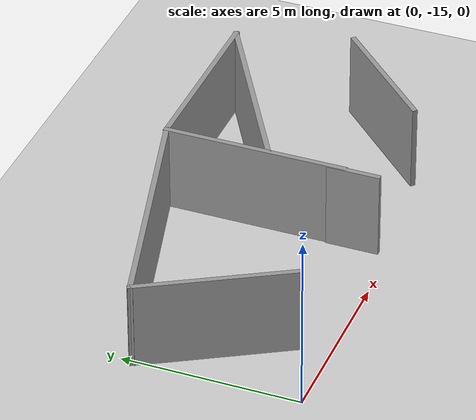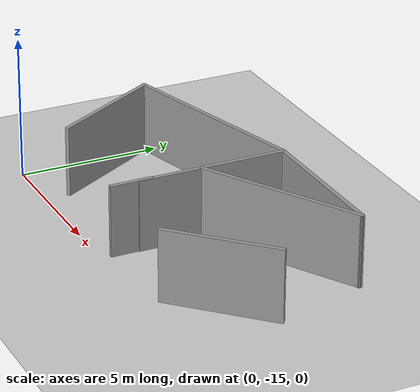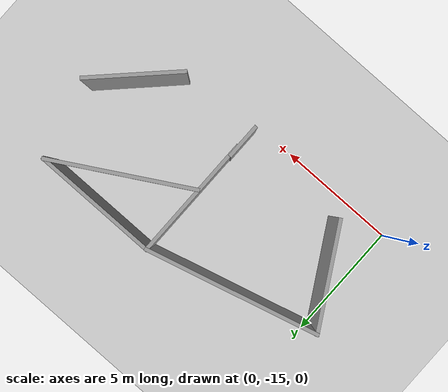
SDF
<sdf version="1.7">
 <world name="default">
  <model name="ground_plane">
   <static>1</static>
   <link name="link">
    <collision name="collision">
     <geometry><plane><normal>0 0 1</normal><size>100 100</size></plane></geometry>
     <surface>
      <contact><collide_bitmask>65535</collide_bitmask></contact>
      <friction><ode><mu>100</mu><mu2>50</mu2></ode></friction>
     </surface>
    </collision>
    <visual name="visual">
     <cast_shadows>0</cast_shadows>
     <geometry><plane><normal>0 0 1</normal><size>100 100</size></plane></geometry>
     <material>
      <script><uri>file://media/materials/scripts/gazebo.material</uri><name>Gazebo/Grey</name></script>
     </material>
    </visual>
   </link>
  </model>
  <model name="object1">
   <pose>6.34982 -7.332 0 0 -0 0</pose>
   <link name="Wall_0">
    <collision name="Wall_0_Collision">
     <geometry><box><size>7.25 0.15 2.5</size></box></geometry>
     <pose>0 0 1.25 0 -0 0</pose>
    </collision>
    <visual name="Wall_0_Visual">
     <pose>0 0 1.25 0 -0 0</pose>
     <geometry><box><size>7.25 0.15 2.5</size></box></geometry>
     <material>
      <script><uri>file://media/materials/scripts/gazebo.material</uri><name>Gazebo/Grey</name></script>
      <ambient>1 1 1 1</ambient>
     </material>
     <meta><layer>0</layer></meta>
    </visual>
    <pose>-3.01106 -2.10686 0 0 -0 0.261799</pose>
   </link>
   <link name="Wall_11">
    <collision name="Wall_11_Collision">
     <geometry><box><size>1.5 0.15 2.5</size></box></geometry>
     <pose>0 0 1.25 0 -0 0</pose>
    </collision>
    <visual name="Wall_11_Visual">
     <pose>0 0 1.25 0 -0 0</pose>
     <geometry><box><size>1.5 0.15 2.5</size></box></geometry>
     <material>
      <script><uri>file://media/materials/scripts/gazebo.material</uri><name>Gazebo/Grey</name></script>
      <ambient>1 1 1 1</ambient>
     </material>
     <meta><layer>0</layer></meta>
    </visual>
    <pose>0.382412 -6.582 0 0 -0 -1.5708</pose>
   </link>
   <link name="Wall_13">
    <collision name="Wall_13_Collision">
     <geometry><box><size>6 0.15 2.5</size></box></geometry>
     <pose>0 0 1.25 0 -0 0</pose>
    </collision>
    <visual name="Wall_13_Visual">
     <pose>0 0 1.25 0 -0 0</pose>
     <geometry><box><size>6 0.15 2.5</size></box></geometry>
     <material>
      <script><uri>file://media/materials/scripts/gazebo.material</uri><name>Gazebo/Grey</name></script>
      <ambient>1 1 1 1</ambient>
     </material>
     <meta><layer>0</layer></meta>
    </visual>
    <pose>2.98485 -2.65056 0 0 -0 -2.61799</pose>
   </link>
   <link name="Wall_16">
    <collision name="Wall_16_Collision">
     <geometry><box><size>4 0.15 2.5</size></box></geometry>
     <pose>0 0 1.25 0 -0 0</pose>
    </collision>
    <visual name="Wall_16_Visual">
     <pose>0 0 1.25 0 -0 0</pose>
     <geometry><box><size>4 0.15 2.5</size></box></geometry>
     <material>
      <script><uri>file://media/materials/scripts/gazebo.material</uri><name>Gazebo/Grey</name></script>
      <ambient>1 1 1 1</ambient>
     </material>
     <meta><layer>0</layer></meta>
    </visual>
    <pose>5.07531 -5.74174 0 0 -0 -2.35619</pose>
   </link>
   <link name="Wall_3">
    <collision name="Wall_3_Collision">
     <geometry><box><size>4.5 0.15 2.5</size></box></geometry>
     <pose>0 0 1.25 0 -0 0</pose>
    </collision>
    <visual name="Wall_3_Visual">
     <pose>0 0 1.25 0 -0 0</pose>
     <geometry><box><size>4.5 0.15 2.5</size></box></geometry>
     <material>
      <script><uri>file://media/materials/scripts/gazebo.material</uri><name>Gazebo/Grey</name></script>
      <ambient>1 1 1 1</ambient>
     </material>
     <meta><layer>0</layer></meta>
    </visual>
    <pose>-5.3526 -4.90928 0 0 -0 -1.0472</pose>
   </link>
   <link name="Wall_5">
    <collision name="Wall_5_Collision">
     <geometry><box><size>5.25 0.15 2.5</size></box></geometry>
     <pose>0 0 1.25 0 -0 0</pose>
    </collision>
    <visual name="Wall_5_Visual">
     <pose>0 0 1.25 0 -0 0</pose>
     <geometry><box><size>5.25 0.15 2.5</size></box></geometry>
     <material>
      <script><uri>file://media/materials/scripts/gazebo.material</uri><name>Gazebo/Grey</name></script>
      <ambient>1 1 1 1</ambient>
     </material>
     <meta><layer>0</layer></meta>
    </visual>
    <pose>0.417972 -3.73806 0 0 -0 -1.5708</pose>
   </link>
   <link name="Wall_7">
    <collision name="Wall_7_Collision">
     <geometry><box><size>5.25 0.15 2.5</size></box></geometry>
     <pose>0 0 1.25 0 -0 0</pose>
    </collision>
    <visual name="Wall_7_Visual">
     <pose>0 0 1.25 0 -0 0</pose>
     <geometry><box><size>5.25 0.15 2.5</size></box></geometry>
     <material>
      <script><uri>file://media/materials/scripts/gazebo.material</uri><name>Gazebo/Grey</name></script>
      <ambient>1 1 1 1</ambient>
     </material>
     <meta><layer>0</layer></meta>
    </visual>
    <pose>2.96797 -1.18806 0 0 -0 0</pose>
   </link>
   <static>1</static>
  </model>
 </world>
</sdf>
